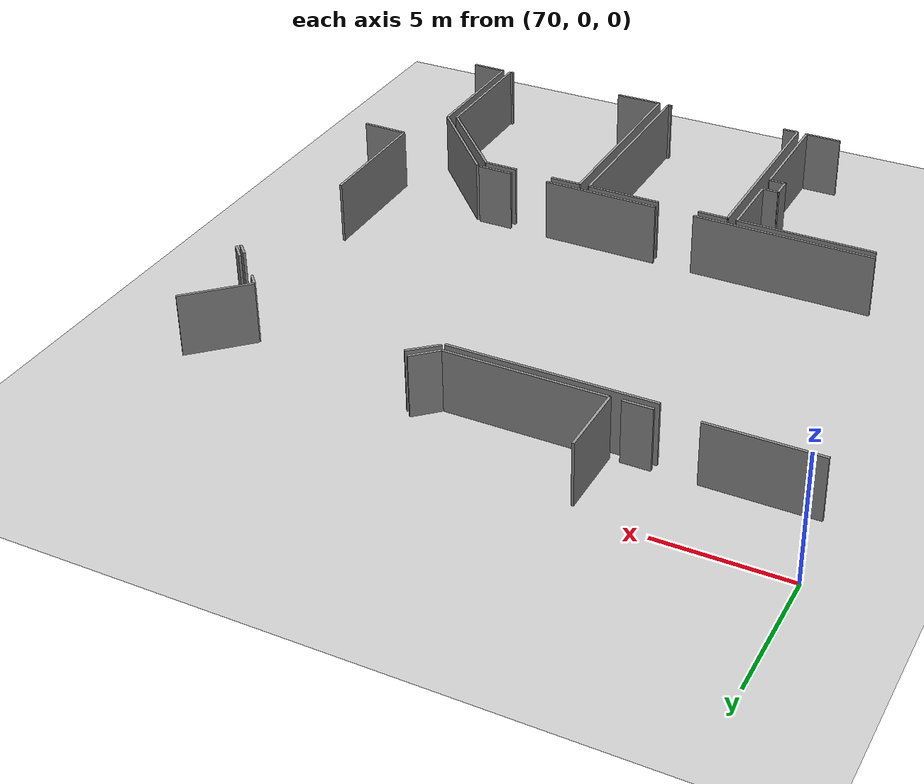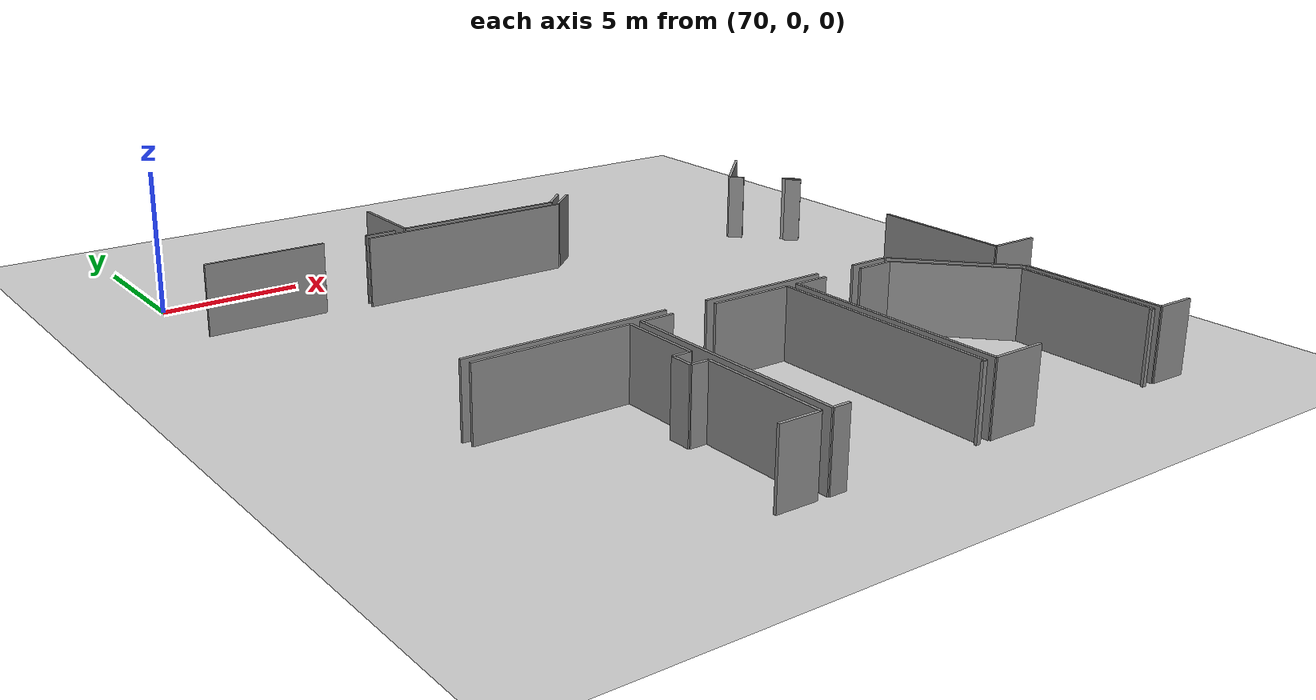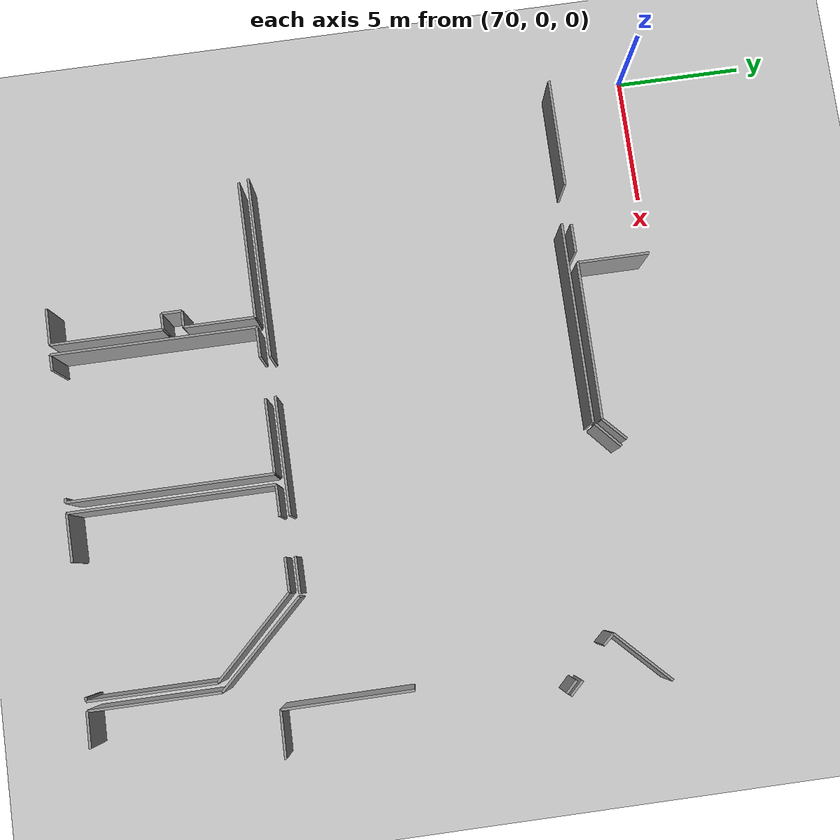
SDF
<sdf version="1.6">
 <world name="default">
  <model name="ground_plane">
   <static>1</static>
   <link name="link">
    <collision name="collision">
     <geometry><plane><normal>0 0 1</normal><size>100 100</size></plane></geometry>
     <surface><friction><ode><mu>100</mu><mu2>50</mu2></ode></friction></surface>
    </collision>
    <visual name="visual">
     <cast_shadows>0</cast_shadows>
     <geometry><plane><normal>0 0 1</normal><size>100 100</size></plane></geometry>
     <material>
      <script><uri>file://media/materials/scripts/gazebo.material</uri><name>Gazebo/Grey</name></script>
     </material>
    </visual>
   </link>
  </model>
  <model name="0510035341_A_40_1_103">
   <static>1</static>
   <link name="Wall_514">
    <collision name="Wall_514_Collision">
     <geometry><box><size>7.92965525998 0.1 2.5</size></box></geometry>
     <pose>3.96482762999 0 1.25 0 0 0</pose>
    </collision>
    <visual name="Wall_514_Visual">
     <pose>3.96482762999 0 1.25 0 0 0</pose>
     <geometry><box><size>7.92965525998 0.1 2.5</size></box></geometry>
     <material>
      <script><uri>file://media/materials/scripts/gazebo.material</uri><name>Gazebo/Grey</name></script>
      <ambient>1 1 1 1</ambient>
     </material>
    </visual>
    <pose>189.111040569 -27.7023681036 0 0 0 0.0</pose>
   </link>
   <link name="Wall_515">
    <collision name="Wall_515_Collision">
     <geometry><box><size>1.42137007174 0.1 2.5</size></box></geometry>
     <pose>0.710685035871 0 1.25 0 0 0</pose>
    </collision>
    <visual name="Wall_515_Visual">
     <pose>0.710685035871 0 1.25 0 0 0</pose>
     <geometry><box><size>1.42137007174 0.1 2.5</size></box></geometry>
     <material>
      <script><uri>file://media/materials/scripts/gazebo.material</uri><name>Gazebo/Grey</name></script>
      <ambient>1 1 1 1</ambient>
     </material>
    </visual>
    <pose>201.97193829 -39.7005904387 0 0 0 3.14159265359</pose>
   </link>
   <link name="Wall_516">
    <collision name="Wall_516_Collision">
     <geometry><box><size>4.6419909847 0.1 2.5</size></box></geometry>
     <pose>2.32099549235 0 1.25 0 0 0</pose>
    </collision>
    <visual name="Wall_516_Visual">
     <pose>2.32099549235 0 1.25 0 0 0</pose>
     <geometry><box><size>4.6419909847 0.1 2.5</size></box></geometry>
     <material>
      <script><uri>file://media/materials/scripts/gazebo.material</uri><name>Gazebo/Grey</name></script>
      <ambient>1 1 1 1</ambient>
     </material>
    </visual>
    <pose>198.993841661 -39.7005904387 0 0 0 3.14159265359</pose>
   </link>
   <link name="Wall_517">
    <collision name="Wall_517_Collision">
     <geometry><box><size>7.17160815186 0.1 2.5</size></box></geometry>
     <pose>3.58580407593 0 1.25 0 0 0</pose>
    </collision>
    <visual name="Wall_517_Visual">
     <pose>3.58580407593 0 1.25 0 0 0</pose>
     <geometry><box><size>7.17160815186 0.1 2.5</size></box></geometry>
     <material>
      <script><uri>file://media/materials/scripts/gazebo.material</uri><name>Gazebo/Grey</name></script>
      <ambient>1 1 1 1</ambient>
     </material>
    </visual>
    <pose>192.78572789 -39.7005904387 0 0 0 3.14159265359</pose>
   </link>
   <link name="Wall_520">
    <collision name="Wall_520_Collision">
     <geometry><box><size>5.09783505809 0.1 2.5</size></box></geometry>
     <pose>2.54891752905 0 1.25 0 0 0</pose>
    </collision>
    <visual name="Wall_520_Visual">
     <pose>2.54891752905 0 1.25 0 0 0</pose>
     <geometry><box><size>5.09783505809 0.1 2.5</size></box></geometry>
     <material>
      <script><uri>file://media/materials/scripts/gazebo.material</uri><name>Gazebo/Grey</name></script>
      <ambient>1 1 1 1</ambient>
     </material>
    </visual>
    <pose>205.189257825 -48.1229128309 0 0 0 1.57079632679</pose>
   </link>
   <link name="Wall_521">
    <collision name="Wall_521_Collision">
     <geometry><box><size>4.54029178397 0.1 2.5</size></box></geometry>
     <pose>2.27014589199 0 1.25 0 0 0</pose>
    </collision>
    <visual name="Wall_521_Visual">
     <pose>2.27014589199 0 1.25 0 0 0</pose>
     <geometry><box><size>4.54029178397 0.1 2.5</size></box></geometry>
     <material>
      <script><uri>file://media/materials/scripts/gazebo.material</uri><name>Gazebo/Grey</name></script>
      <ambient>1 1 1 1</ambient>
     </material>
    </visual>
    <pose>205.189257825 -43.0250777728 0 0 0 2.32941553218</pose>
   </link>
   <link name="Wall_522">
    <collision name="Wall_522_Collision">
     <geometry><box><size>1.30608854423 0.1 2.5</size></box></geometry>
     <pose>0.653044272113 0 1.25 0 0 0</pose>
    </collision>
    <visual name="Wall_522_Visual">
     <pose>0.653044272113 0 1.25 0 0 0</pose>
     <geometry><box><size>1.30608854423 0.1 2.5</size></box></geometry>
     <material>
      <script><uri>file://media/materials/scripts/gazebo.material</uri><name>Gazebo/Grey</name></script>
      <ambient>1 1 1 1</ambient>
     </material>
    </visual>
    <pose>197.113834042 -27.6223731827 0 0 0 0.722524811877</pose>
   </link>
   <link name="Wall_546">
    <collision name="Wall_546_Collision">
     <geometry><box><size>5.07249133707 0.1 2.5</size></box></geometry>
     <pose>2.53624566854 0 1.25 0 0 0</pose>
    </collision>
    <visual name="Wall_546_Visual">
     <pose>2.53624566854 0 1.25 0 0 0</pose>
     <geometry><box><size>5.07249133707 0.1 2.5</size></box></geometry>
     <material>
      <script><uri>file://media/materials/scripts/gazebo.material</uri><name>Gazebo/Grey</name></script>
      <ambient>1 1 1 1</ambient>
     </material>
    </visual>
    <pose>206.103485493 -35.875055552 0 0 0 -1.56629049967</pose>
   </link>
   <link name="Wall_547">
    <collision name="Wall_547_Collision">
     <geometry><box><size>1.81097501748 0.1 2.5</size></box></geometry>
     <pose>0.905487508738 0 1.25 0 0 0</pose>
    </collision>
    <visual name="Wall_547_Visual">
     <pose>0.905487508738 0 1.25 0 0 0</pose>
     <geometry><box><size>1.81097501748 0.1 2.5</size></box></geometry>
     <material>
      <script><uri>file://media/materials/scripts/gazebo.material</uri><name>Gazebo/Grey</name></script>
      <ambient>1 1 1 1</ambient>
     </material>
    </visual>
    <pose>206.126341185 -40.9474953971 0 0 0 -0.0180905928615</pose>
   </link>
   <link name="Wall_550">
    <collision name="Wall_550_Collision">
     <geometry><box><size>1.37651059639 0.1 2.5</size></box></geometry>
     <pose>0.688255298196 0 1.25 0 0 0</pose>
    </collision>
    <visual name="Wall_550_Visual">
     <pose>0.688255298196 0 1.25 0 0 0</pose>
     <geometry><box><size>1.37651059639 0.1 2.5</size></box></geometry>
     <material>
      <script><uri>file://media/materials/scripts/gazebo.material</uri><name>Gazebo/Grey</name></script>
      <ambient>1 1 1 1</ambient>
     </material>
    </visual>
    <pose>206.56567837 -48.138657863 0 0 0 3.13015403811</pose>
   </link>
   <link name="Wall_603">
    <collision name="Wall_603_Collision">
     <geometry><box><size>1.13541997334 0.1 2.5</size></box></geometry>
     <pose>0.567709986668 0 1.25 0 0 0</pose>
    </collision>
    <visual name="Wall_603_Visual">
     <pose>0.567709986668 0 1.25 0 0 0</pose>
     <geometry><box><size>1.13541997334 0.1 2.5</size></box></geometry>
     <material>
      <script><uri>file://media/materials/scripts/gazebo.material</uri><name>Gazebo/Grey</name></script>
      <ambient>1 1 1 1</ambient>
     </material>
    </visual>
    <pose>190.310964383 -27.3343914672 0 0 0 3.14159265359</pose>
   </link>
   <link name="Wall_604">
    <collision name="Wall_604_Collision">
     <geometry><box><size>4.29562913506 0.1 2.5</size></box></geometry>
     <pose>2.14781456753 0 1.25 0 0 0</pose>
    </collision>
    <visual name="Wall_604_Visual">
     <pose>2.14781456753 0 1.25 0 0 0</pose>
     <geometry><box><size>4.29562913506 0.1 2.5</size></box></geometry>
     <material>
      <script><uri>file://media/materials/scripts/gazebo.material</uri><name>Gazebo/Grey</name></script>
      <ambient>1 1 1 1</ambient>
     </material>
    </visual>
    <pose>187.548727065 -27.3343914672 0 0 0 3.13792728425</pose>
   </link>
   <link name="Wall_649">
    <collision name="Wall_649_Collision">
     <geometry><box><size>0.615032266204 0.1 2.5</size></box></geometry>
     <pose>0.307516133102 0 1.25 0 0 0</pose>
    </collision>
    <visual name="Wall_649_Visual">
     <pose>0.307516133102 0 1.25 0 0 0</pose>
     <geometry><box><size>0.615032266204 0.1 2.5</size></box></geometry>
     <material>
      <script><uri>file://media/materials/scripts/gazebo.material</uri><name>Gazebo/Grey</name></script>
      <ambient>1 1 1 1</ambient>
     </material>
    </visual>
    <pose>207.007555076 -30.257888388 0 0 0 2.35473463721</pose>
   </link>
   <link name="Wall_650">
    <collision name="Wall_650_Collision">
     <geometry><box><size>0.576476705041 0.1 2.5</size></box></geometry>
     <pose>0.288238352521 0 1.25 0 0 0</pose>
    </collision>
    <visual name="Wall_650_Visual">
     <pose>0.288238352521 0 1.25 0 0 0</pose>
     <geometry><box><size>0.576476705041 0.1 2.5</size></box></geometry>
     <material>
      <script><uri>file://media/materials/scripts/gazebo.material</uri><name>Gazebo/Grey</name></script>
      <ambient>1 1 1 1</ambient>
     </material>
    </visual>
    <pose>205.445749476 -28.6178655323 0 0 0 2.30446277088</pose>
   </link>
   <link name="Wall_651">
    <collision name="Wall_651_Collision">
     <geometry><box><size>2.80864857331 0.1 2.5</size></box></geometry>
     <pose>1.40432428665 0 1.25 0 0 0</pose>
    </collision>
    <visual name="Wall_651_Visual">
     <pose>1.40432428665 0 1.25 0 0 0</pose>
     <geometry><box><size>2.80864857331 0.1 2.5</size></box></geometry>
     <material>
      <script><uri>file://media/materials/scripts/gazebo.material</uri><name>Gazebo/Grey</name></script>
      <ambient>1 1 1 1</ambient>
     </material>
    </visual>
    <pose>205.059742239 -28.1897022411 0 0 0 0.769989190596</pose>
   </link>
   <link name="Wall_656">
    <collision name="Wall_656_Collision">
     <geometry><box><size>0.721915871141 0.1 2.5</size></box></geometry>
     <pose>0.360957935571 0 1.25 0 0 0</pose>
    </collision>
    <visual name="Wall_656_Visual">
     <pose>0.360957935571 0 1.25 0 0 0</pose>
     <geometry><box><size>0.721915871141 0.1 2.5</size></box></geometry>
     <material>
      <script><uri>file://media/materials/scripts/gazebo.material</uri><name>Gazebo/Grey</name></script>
      <ambient>1 1 1 1</ambient>
     </material>
    </visual>
    <pose>206.619008317 -29.5968509936 0 0 0 -0.810026176187</pose>
   </link>
   <link name="Wall_683">
    <collision name="Wall_683_Collision">
     <geometry><box><size>8.03910862802 0.1 2.5</size></box></geometry>
     <pose>4.01955431401 0 1.25 0 0 0</pose>
    </collision>
    <visual name="Wall_683_Visual">
     <pose>4.01955431401 0 1.25 0 0 0</pose>
     <geometry><box><size>8.03910862802 0.1 2.5</size></box></geometry>
     <material>
      <script><uri>file://media/materials/scripts/gazebo.material</uri><name>Gazebo/Grey</name></script>
      <ambient>1 1 1 1</ambient>
     </material>
    </visual>
    <pose>197.741603708 -48.1300234906 0 0 0 1.57079632679</pose>
   </link>
   <link name="Wall_684">
    <collision name="Wall_684_Collision">
     <geometry><box><size>1.22531902736 0.1 2.5</size></box></geometry>
     <pose>0.612659513682 0 1.25 0 0 0</pose>
    </collision>
    <visual name="Wall_684_Visual">
     <pose>0.612659513682 0 1.25 0 0 0</pose>
     <geometry><box><size>1.22531902736 0.1 2.5</size></box></geometry>
     <material>
      <script><uri>file://media/materials/scripts/gazebo.material</uri><name>Gazebo/Grey</name></script>
      <ambient>1 1 1 1</ambient>
     </material>
    </visual>
    <pose>197.741603708 -40.0909148625 0 0 0 0.0</pose>
   </link>
   <link name="Wall_685">
    <collision name="Wall_685_Collision">
     <geometry><box><size>1.33832772522 0.1 2.5</size></box></geometry>
     <pose>0.669163862612 0 1.25 0 0 0</pose>
    </collision>
    <visual name="Wall_685_Visual">
     <pose>0.669163862612 0 1.25 0 0 0</pose>
     <geometry><box><size>1.33832772522 0.1 2.5</size></box></geometry>
     <material>
      <script><uri>file://media/materials/scripts/gazebo.material</uri><name>Gazebo/Grey</name></script>
      <ambient>1 1 1 1</ambient>
     </material>
    </visual>
    <pose>200.525426957 -40.0909148625 0 0 0 0.0</pose>
   </link>
   <link name="Wall_686">
    <collision name="Wall_686_Collision">
     <geometry><box><size>4.26274460495 0.1 2.5</size></box></geometry>
     <pose>2.13137230247 0 1.25 0 0 0</pose>
    </collision>
    <visual name="Wall_686_Visual">
     <pose>2.13137230247 0 1.25 0 0 0</pose>
     <geometry><box><size>4.26274460495 0.1 2.5</size></box></geometry>
     <material>
      <script><uri>file://media/materials/scripts/gazebo.material</uri><name>Gazebo/Grey</name></script>
      <ambient>1 1 1 1</ambient>
     </material>
    </visual>
    <pose>201.863754682 -40.0909148625 0 0 0 -0.802459916095</pose>
   </link>
   <link name="Wall_687">
    <collision name="Wall_687_Collision">
     <geometry><box><size>4.95486000889 0.1 2.5</size></box></geometry>
     <pose>2.47743000444 0 1.25 0 0 0</pose>
    </collision>
    <visual name="Wall_687_Visual">
     <pose>2.47743000444 0 1.25 0 0 0</pose>
     <geometry><box><size>4.95486000889 0.1 2.5</size></box></geometry>
     <material>
      <script><uri>file://media/materials/scripts/gazebo.material</uri><name>Gazebo/Grey</name></script>
      <ambient>1 1 1 1</ambient>
     </material>
    </visual>
    <pose>204.826106279 -43.1561170719 0 0 0 -1.57079632679</pose>
   </link>
   <link name="Wall_688">
    <collision name="Wall_688_Collision">
     <geometry><box><size>0.152371278014 0.1 2.5</size></box></geometry>
     <pose>0.0761856390071 0 1.25 0 0 0</pose>
    </collision>
    <visual name="Wall_688_Visual">
     <pose>0.0761856390071 0 1.25 0 0 0</pose>
     <geometry><box><size>0.152371278014 0.1 2.5</size></box></geometry>
     <material>
      <script><uri>file://media/materials/scripts/gazebo.material</uri><name>Gazebo/Grey</name></script>
      <ambient>1 1 1 1</ambient>
     </material>
    </visual>
    <pose>204.826106279 -48.1109770808 0 0 0 3.14159265359</pose>
   </link>
   <link name="Wall_689">
    <collision name="Wall_689_Collision">
     <geometry><box><size>1.88086591325 0.1 2.5</size></box></geometry>
     <pose>0.940432956627 0 1.25 0 0 0</pose>
    </collision>
    <visual name="Wall_689_Visual">
     <pose>0.940432956627 0 1.25 0 0 0</pose>
     <geometry><box><size>1.88086591325 0.1 2.5</size></box></geometry>
     <material>
      <script><uri>file://media/materials/scripts/gazebo.material</uri><name>Gazebo/Grey</name></script>
      <ambient>1 1 1 1</ambient>
     </material>
    </visual>
    <pose>199.622373183 -48.1109770808 0 0 0 -3.13146607564</pose>
   </link>
   <link name="Wall_690">
    <collision name="Wall_690_Collision">
     <geometry><box><size>8.04952066535 0.1 2.5</size></box></geometry>
     <pose>4.02476033268 0 1.25 0 0 0</pose>
    </collision>
    <visual name="Wall_690_Visual">
     <pose>4.02476033268 0 1.25 0 0 0</pose>
     <geometry><box><size>8.04952066535 0.1 2.5</size></box></geometry>
     <material>
      <script><uri>file://media/materials/scripts/gazebo.material</uri><name>Gazebo/Grey</name></script>
      <ambient>1 1 1 1</ambient>
     </material>
    </visual>
    <pose>191.555075868 -48.1396736715 0 0 0 1.57079632679</pose>
   </link>
   <link name="Wall_691">
    <collision name="Wall_691_Collision">
     <geometry><box><size>1.19230525046 0.1 2.5</size></box></geometry>
     <pose>0.59615262523 0 1.25 0 0 0</pose>
    </collision>
    <visual name="Wall_691_Visual">
     <pose>0.59615262523 0 1.25 0 0 0</pose>
     <geometry><box><size>1.19230525046 0.1 2.5</size></box></geometry>
     <material>
      <script><uri>file://media/materials/scripts/gazebo.material</uri><name>Gazebo/Grey</name></script>
      <ambient>1 1 1 1</ambient>
     </material>
    </visual>
    <pose>191.555075868 -40.0901530062 0 0 0 0.0</pose>
   </link>
   <link name="Wall_692">
    <collision name="Wall_692_Collision">
     <geometry><box><size>2.93797219224 0.1 2.5</size></box></geometry>
     <pose>1.46898609612 0 1.25 0 0 0</pose>
    </collision>
    <visual name="Wall_692_Visual">
     <pose>1.46898609612 0 1.25 0 0 0</pose>
     <geometry><box><size>2.93797219224 0.1 2.5</size></box></geometry>
     <material>
      <script><uri>file://media/materials/scripts/gazebo.material</uri><name>Gazebo/Grey</name></script>
      <ambient>1 1 1 1</ambient>
     </material>
    </visual>
    <pose>194.38689607 -40.0901530062 0 0 0 0.0</pose>
   </link>
   <link name="Wall_693">
    <collision name="Wall_693_Collision">
     <geometry><box><size>8.03580725033 0.1 2.5</size></box></geometry>
     <pose>4.01790362517 0 1.25 0 0 0</pose>
    </collision>
    <visual name="Wall_693_Visual">
     <pose>4.01790362517 0 1.25 0 0 0</pose>
     <geometry><box><size>8.03580725033 0.1 2.5</size></box></geometry>
     <material>
      <script><uri>file://media/materials/scripts/gazebo.material</uri><name>Gazebo/Grey</name></script>
      <ambient>1 1 1 1</ambient>
     </material>
    </visual>
    <pose>197.324868262 -40.0901530062 0 0 0 -1.57079632679</pose>
   </link>
   <link name="Wall_694">
    <collision name="Wall_694_Collision">
     <geometry><box><size>0.157958224875 0.1 2.5</size></box></geometry>
     <pose>0.0789791124373 0 1.25 0 0 0</pose>
    </collision>
    <visual name="Wall_694_Visual">
     <pose>0.0789791124373 0 1.25 0 0 0</pose>
     <geometry><box><size>0.157958224875 0.1 2.5</size></box></geometry>
     <material>
      <script><uri>file://media/materials/scripts/gazebo.material</uri><name>Gazebo/Grey</name></script>
      <ambient>1 1 1 1</ambient>
     </material>
    </visual>
    <pose>197.324868262 -48.1259602565 0 0 0 3.14159265359</pose>
   </link>
   <link name="Wall_695">
    <collision name="Wall_695_Collision">
     <geometry><box><size>0.612178249848 0.1 2.5</size></box></geometry>
     <pose>0.306089124924 0 1.25 0 0 0</pose>
    </collision>
    <visual name="Wall_695_Visual">
     <pose>0.306089124924 0 1.25 0 0 0</pose>
     <geometry><box><size>0.612178249848 0.1 2.5</size></box></geometry>
     <material>
      <script><uri>file://media/materials/scripts/gazebo.material</uri><name>Gazebo/Grey</name></script>
      <ambient>1 1 1 1</ambient>
     </material>
    </visual>
    <pose>192.167100502 -48.1259602565 0 0 0 -3.11918976326</pose>
   </link>
   <link name="Wall_698">
    <collision name="Wall_698_Collision">
     <geometry><box><size>5.45997079551 0.1 2.5</size></box></geometry>
     <pose>2.72998539775 0 1.25 0 0 0</pose>
    </collision>
    <visual name="Wall_698_Visual">
     <pose>2.72998539775 0 1.25 0 0 0</pose>
     <geometry><box><size>5.45997079551 0.1 2.5</size></box></geometry>
     <material>
      <script><uri>file://media/materials/scripts/gazebo.material</uri><name>Gazebo/Grey</name></script>
      <ambient>1 1 1 1</ambient>
     </material>
    </visual>
    <pose>185.708589931 -40.0909148625 0 0 0 0.0</pose>
   </link>
   <link name="Wall_699">
    <collision name="Wall_699_Collision">
     <geometry><box><size>2.8056631325 0.1 2.5</size></box></geometry>
     <pose>1.40283156625 0 1.25 0 0 0</pose>
    </collision>
    <visual name="Wall_699_Visual">
     <pose>1.40283156625 0 1.25 0 0 0</pose>
     <geometry><box><size>2.8056631325 0.1 2.5</size></box></geometry>
     <material>
      <script><uri>file://media/materials/scripts/gazebo.material</uri><name>Gazebo/Grey</name></script>
      <ambient>1 1 1 1</ambient>
     </material>
    </visual>
    <pose>191.168560726 -40.0909148625 0 0 0 -1.57079632679</pose>
   </link>
   <link name="Wall_700">
    <collision name="Wall_700_Collision">
     <geometry><box><size>0.640467271919 0.1 2.5</size></box></geometry>
     <pose>0.32023363596 0 1.25 0 0 0</pose>
    </collision>
    <visual name="Wall_700_Visual">
     <pose>0.32023363596 0 1.25 0 0 0</pose>
     <geometry><box><size>0.640467271919 0.1 2.5</size></box></geometry>
     <material>
      <script><uri>file://media/materials/scripts/gazebo.material</uri><name>Gazebo/Grey</name></script>
      <ambient>1 1 1 1</ambient>
     </material>
    </visual>
    <pose>191.168560726 -42.896577995 0 0 0 3.14159265359</pose>
   </link>
   <link name="Wall_701">
    <collision name="Wall_701_Collision">
     <geometry><box><size>0.801472922354 0.1 2.5</size></box></geometry>
     <pose>0.400736461177 0 1.25 0 0 0</pose>
    </collision>
    <visual name="Wall_701_Visual">
     <pose>0.400736461177 0 1.25 0 0 0</pose>
     <geometry><box><size>0.801472922354 0.1 2.5</size></box></geometry>
     <material>
      <script><uri>file://media/materials/scripts/gazebo.material</uri><name>Gazebo/Grey</name></script>
      <ambient>1 1 1 1</ambient>
     </material>
    </visual>
    <pose>190.528093454 -42.896577995 0 0 0 -1.57079632679</pose>
   </link>
   <link name="Wall_702">
    <collision name="Wall_702_Collision">
     <geometry><box><size>0.634626372929 0.1 2.5</size></box></geometry>
     <pose>0.317313186464 0 1.25 0 0 0</pose>
    </collision>
    <visual name="Wall_702_Visual">
     <pose>0.317313186464 0 1.25 0 0 0</pose>
     <geometry><box><size>0.634626372929 0.1 2.5</size></box></geometry>
     <material>
      <script><uri>file://media/materials/scripts/gazebo.material</uri><name>Gazebo/Grey</name></script>
      <ambient>1 1 1 1</ambient>
     </material>
    </visual>
    <pose>190.528093454 -43.6980509174 0 0 0 0.0</pose>
   </link>
   <link name="Wall_703">
    <collision name="Wall_703_Collision">
     <geometry><box><size>4.41876706241 0.1 2.5</size></box></geometry>
     <pose>2.2093835312 0 1.25 0 0 0</pose>
    </collision>
    <visual name="Wall_703_Visual">
     <pose>2.2093835312 0 1.25 0 0 0</pose>
     <geometry><box><size>4.41876706241 0.1 2.5</size></box></geometry>
     <material>
      <script><uri>file://media/materials/scripts/gazebo.material</uri><name>Gazebo/Grey</name></script>
      <ambient>1 1 1 1</ambient>
     </material>
    </visual>
    <pose>191.162719827 -43.6980509174 0 0 0 -1.57079632679</pose>
   </link>
   <link name="Wall_704">
    <collision name="Wall_704_Collision">
     <geometry><box><size>1.44016252936 0.1 2.5</size></box></geometry>
     <pose>0.720081264682 0 1.25 0 0 0</pose>
    </collision>
    <visual name="Wall_704_Visual">
     <pose>0.720081264682 0 1.25 0 0 0</pose>
     <geometry><box><size>1.44016252936 0.1 2.5</size></box></geometry>
     <material>
      <script><uri>file://media/materials/scripts/gazebo.material</uri><name>Gazebo/Grey</name></script>
      <ambient>1 1 1 1</ambient>
     </material>
    </visual>
    <pose>191.162719827 -48.1168179798 0 0 0 3.14159265359</pose>
   </link>
   <link name="Wall_754">
    <collision name="Wall_754_Collision">
     <geometry><box><size>2.83131229763 0.1 2.5</size></box></geometry>
     <pose>1.41565614882 0 1.25 0 0 0</pose>
    </collision>
    <visual name="Wall_754_Visual">
     <pose>1.41565614882 0 1.25 0 0 0</pose>
     <geometry><box><size>2.83131229763 0.1 2.5</size></box></geometry>
     <material>
      <script><uri>file://media/materials/scripts/gazebo.material</uri><name>Gazebo/Grey</name></script>
      <ambient>1 1 1 1</ambient>
     </material>
    </visual>
    <pose>190.732017015 -27.3247412863 0 0 0 1.57079632679</pose>
   </link>
   <link name="Wall_762">
    <collision name="Wall_762_Collision">
     <geometry><box><size>1.2120794909 0.1 2.5</size></box></geometry>
     <pose>0.606039745451 0 1.25 0 0 0</pose>
    </collision>
    <visual name="Wall_762_Visual">
     <pose>0.606039745451 0 1.25 0 0 0</pose>
     <geometry><box><size>1.2120794909 0.1 2.5</size></box></geometry>
     <material>
      <script><uri>file://media/materials/scripts/gazebo.material</uri><name>Gazebo/Grey</name></script>
      <ambient>1 1 1 1</ambient>
     </material>
    </visual>
    <pose>197.84673989 -26.5118405181 0 0 0 -2.38997943613</pose>
   </link>
   <link name="Wall_763">
    <collision name="Wall_763_Collision">
     <geometry><box><size>6.2292092113 0.1 2.5</size></box></geometry>
     <pose>3.11460460565 0 1.25 0 0 0</pose>
    </collision>
    <visual name="Wall_763_Visual">
     <pose>3.11460460565 0 1.25 0 0 0</pose>
     <geometry><box><size>6.2292092113 0.1 2.5</size></box></geometry>
     <material>
      <script><uri>file://media/materials/scripts/gazebo.material</uri><name>Gazebo/Grey</name></script>
      <ambient>1 1 1 1</ambient>
     </material>
    </visual>
    <pose>196.961208812 -27.3394705098 0 0 0 3.13922810991</pose>
   </link>
   <pose>-112.9 24.0688781665 0 0 0 0</pose>
  </model>
 </world>
</sdf>
